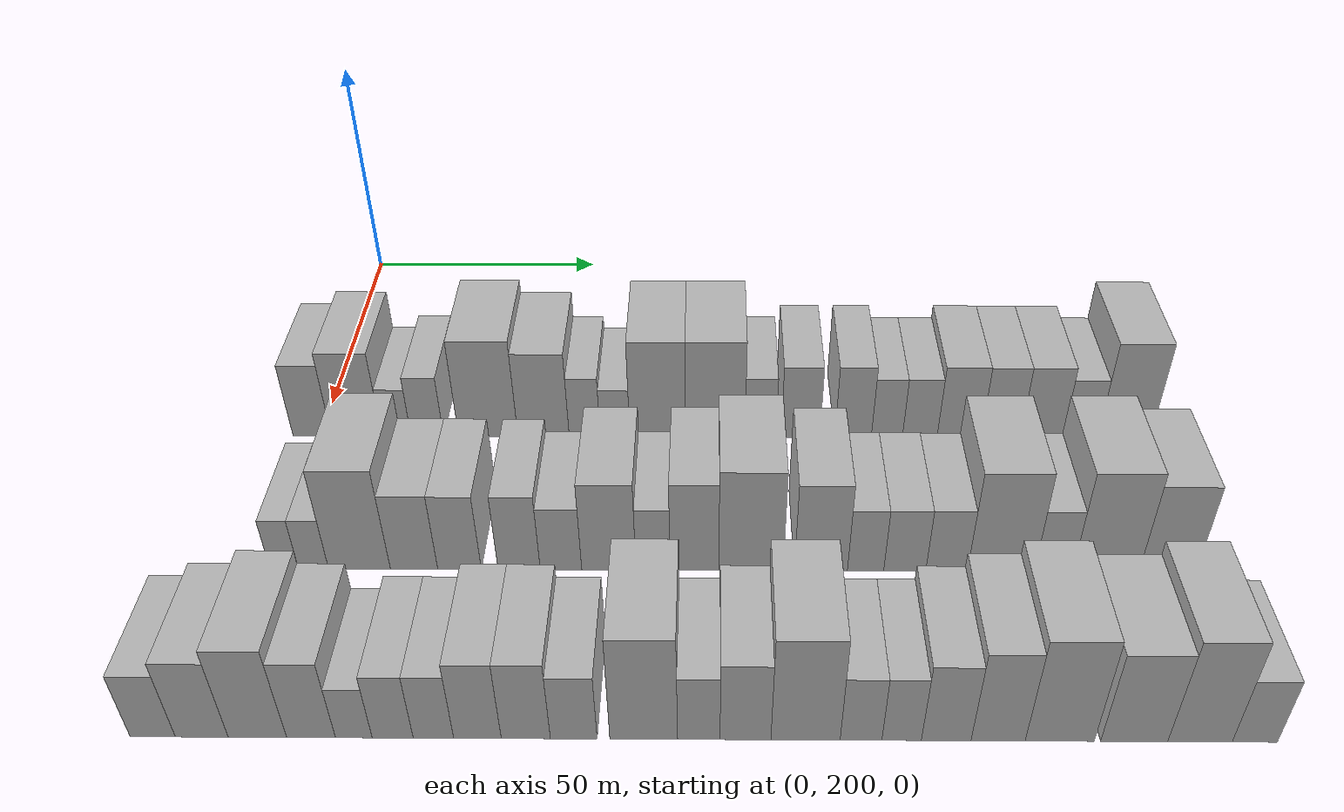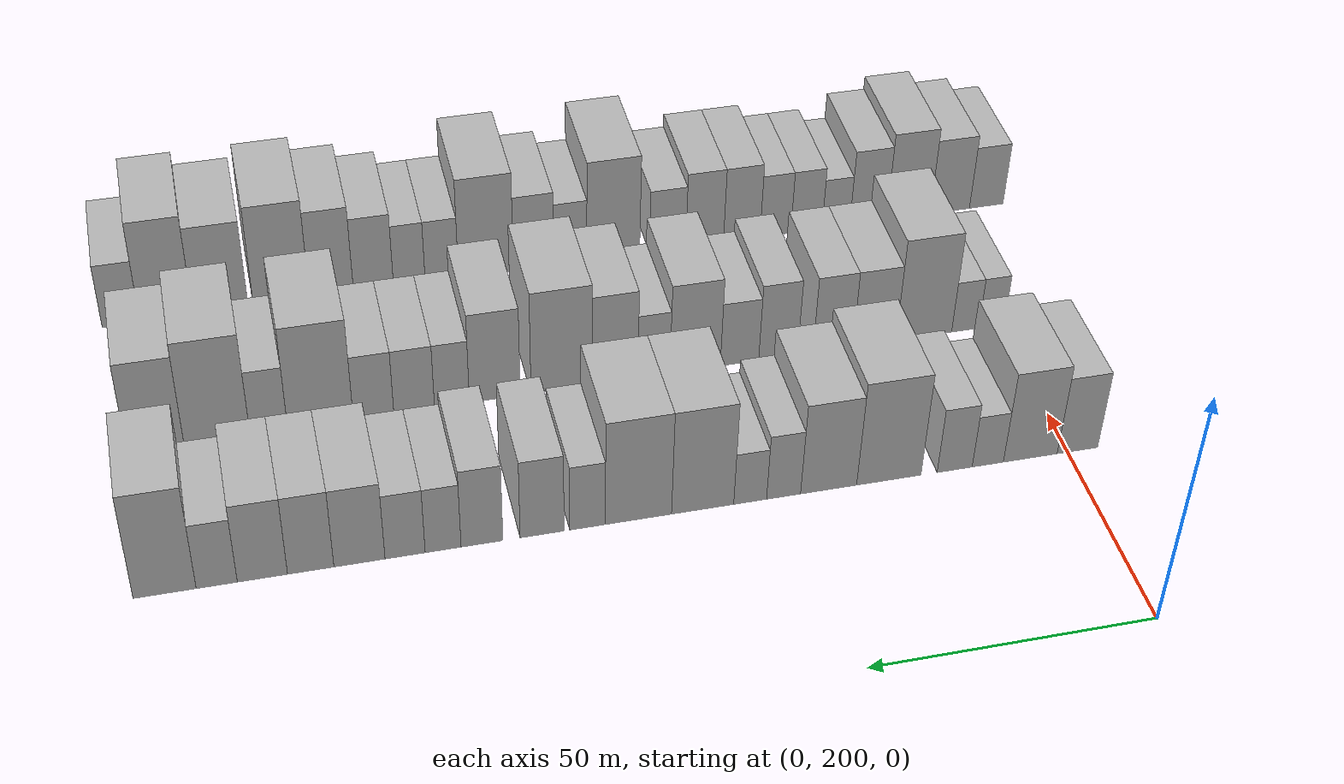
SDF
<sdf version="1.6">
 <world name="default">
  <model name="building_64">
   <static>1</static>
   <pose>50.0000 198.2894 0 0.000000 0.000000 0.000000</pose>
   <link name="link">
    <pose>0 0 9.00 0 0 0</pose>
    <collision name="collision"><geometry><box><size>20.0000 7.6532 18.0000</size></box></geometry></collision>
    <visual name="visual">
     <cast_shadows>0</cast_shadows>
     <geometry><box><size>20.0000 7.6532 18.0000</size></box></geometry>
     <material>
      <script>
       <uri>model://HANNAS_wall/materials/scripts</uri>
       <uri>model://HANNAS_wall/materials/textures</uri>
       <name>vrc/HANNAS_wall</name>
      </script>
     </material>
    </visual>
   </link>
  </model>
  <model name="building_65">
   <static>1</static>
   <pose>50.0000 207.1650 0 0.000000 0.000000 0.000000</pose>
   <link name="link">
    <pose>0 0 10.50 0 0 0</pose>
    <collision name="collision"><geometry><box><size>20.0000 10.0982 21.0000</size></box></geometry></collision>
    <visual name="visual">
     <cast_shadows>0</cast_shadows>
     <geometry><box><size>20.0000 10.0982 21.0000</size></box></geometry>
     <material>
      <script>
       <uri>model://HANNAS_wall/materials/scripts</uri>
       <uri>model://HANNAS_wall/materials/textures</uri>
       <name>vrc/HANNAS_wall</name>
      </script>
     </material>
    </visual>
   </link>
  </model>
  <model name="building_66">
   <static>1</static>
   <pose>50.0000 215.1283 0 0.000000 0.000000 0.000000</pose>
   <link name="link">
    <pose>0 0 6.00 0 0 0</pose>
    <collision name="collision"><geometry><box><size>20.0000 5.8283 12.0000</size></box></geometry></collision>
    <visual name="visual">
     <cast_shadows>0</cast_shadows>
     <geometry><box><size>20.0000 5.8283 12.0000</size></box></geometry>
     <material>
      <script>
       <uri>model://HANNAS_wall/materials/scripts</uri>
       <uri>model://HANNAS_wall/materials/textures</uri>
       <name>vrc/HANNAS_wall</name>
      </script>
     </material>
    </visual>
   </link>
  </model>
  <model name="building_67">
   <static>1</static>
   <pose>50.0000 221.2899 0 0.000000 0.000000 0.000000</pose>
   <link name="link">
    <pose>0 0 7.50 0 0 0</pose>
    <collision name="collision"><geometry><box><size>20.0000 6.4949 15.0000</size></box></geometry></collision>
    <visual name="visual">
     <cast_shadows>0</cast_shadows>
     <geometry><box><size>20.0000 6.4949 15.0000</size></box></geometry>
     <material>
      <script>
       <uri>model://HANNAS_wall/materials/scripts</uri>
       <uri>model://HANNAS_wall/materials/textures</uri>
       <name>vrc/HANNAS_wall</name>
      </script>
     </material>
    </visual>
   </link>
  </model>
  <model name="building_68">
   <static>1</static>
   <pose>50.0000 233.4532 0 0.000000 0.000000 0.000000</pose>
   <link name="link">
    <pose>0 0 12.00 0 0 0</pose>
    <collision name="collision"><geometry><box><size>20.0000 11.8316 24.0000</size></box></geometry></collision>
    <visual name="visual">
     <cast_shadows>0</cast_shadows>
     <geometry><box><size>20.0000 11.8316 24.0000</size></box></geometry>
     <material>
      <script>
       <uri>model://HANNAS_wall/materials/scripts</uri>
       <uri>model://HANNAS_wall/materials/textures</uri>
       <name>vrc/HANNAS_wall</name>
      </script>
     </material>
    </visual>
   </link>
  </model>
  <model name="building_69">
   <static>1</static>
   <pose>50.0000 244.4825 0 0.000000 0.000000 0.000000</pose>
   <link name="link">
    <pose>0 0 10.50 0 0 0</pose>
    <collision name="collision"><geometry><box><size>20.0000 10.2271 21.0000</size></box></geometry></collision>
    <visual name="visual">
     <cast_shadows>0</cast_shadows>
     <geometry><box><size>20.0000 10.2271 21.0000</size></box></geometry>
     <material>
      <script>
       <uri>model://HANNAS_wall/materials/scripts</uri>
       <uri>model://HANNAS_wall/materials/textures</uri>
       <name>vrc/HANNAS_wall</name>
      </script>
     </material>
    </visual>
   </link>
  </model>
  <model name="building_70">
   <static>1</static>
   <pose>50.0000 252.6746 0 0.000000 0.000000 0.000000</pose>
   <link name="link">
    <pose>0 0 7.50 0 0 0</pose>
    <collision name="collision"><geometry><box><size>20.0000 6.1571 15.0000</size></box></geometry></collision>
    <visual name="visual">
     <cast_shadows>0</cast_shadows>
     <geometry><box><size>20.0000 6.1571 15.0000</size></box></geometry>
     <material>
      <script>
       <uri>model://HANNAS_wall/materials/scripts</uri>
       <uri>model://HANNAS_wall/materials/textures</uri>
       <name>vrc/HANNAS_wall</name>
      </script>
     </material>
    </visual>
   </link>
  </model>
  <model name="building_71">
   <static>1</static>
   <pose>50.0000 258.7114 0 0.000000 0.000000 0.000000</pose>
   <link name="link">
    <pose>0 0 6.00 0 0 0</pose>
    <collision name="collision"><geometry><box><size>20.0000 5.9164 12.0000</size></box></geometry></collision>
    <visual name="visual">
     <cast_shadows>0</cast_shadows>
     <geometry><box><size>20.0000 5.9164 12.0000</size></box></geometry>
     <material>
      <script>
       <uri>model://HANNAS_wall/materials/scripts</uri>
       <uri>model://HANNAS_wall/materials/textures</uri>
       <name>vrc/HANNAS_wall</name>
      </script>
     </material>
    </visual>
   </link>
  </model>
  <model name="building_72">
   <static>1</static>
   <pose>50.0000 267.2373 0 0.000000 0.000000 0.000000</pose>
   <link name="link">
    <pose>0 0 12.00 0 0 0</pose>
    <collision name="collision"><geometry><box><size>20.0000 11.1354 24.0000</size></box></geometry></collision>
    <visual name="visual">
     <cast_shadows>0</cast_shadows>
     <geometry><box><size>20.0000 11.1354 24.0000</size></box></geometry>
     <material>
      <script>
       <uri>model://HANNAS_wall/materials/scripts</uri>
       <uri>model://HANNAS_wall/materials/textures</uri>
       <name>vrc/HANNAS_wall</name>
      </script>
     </material>
    </visual>
   </link>
  </model>
  <model name="building_73">
   <static>1</static>
   <pose>50.0000 278.6968 0 0.000000 0.000000 0.000000</pose>
   <link name="link">
    <pose>0 0 12.00 0 0 0</pose>
    <collision name="collision"><geometry><box><size>20.0000 11.7836 24.0000</size></box></geometry></collision>
    <visual name="visual">
     <cast_shadows>0</cast_shadows>
     <geometry><box><size>20.0000 11.7836 24.0000</size></box></geometry>
     <material>
      <script>
       <uri>model://HANNAS_wall/materials/scripts</uri>
       <uri>model://HANNAS_wall/materials/textures</uri>
       <name>vrc/HANNAS_wall</name>
      </script>
     </material>
    </visual>
   </link>
  </model>
  <model name="building_74">
   <static>1</static>
   <pose>50.0000 287.6970 0 0.000000 0.000000 0.000000</pose>
   <link name="link">
    <pose>0 0 7.50 0 0 0</pose>
    <collision name="collision"><geometry><box><size>20.0000 6.2170 15.0000</size></box></geometry></collision>
    <visual name="visual">
     <cast_shadows>0</cast_shadows>
     <geometry><box><size>20.0000 6.2170 15.0000</size></box></geometry>
     <material>
      <script>
       <uri>model://HANNAS_wall/materials/scripts</uri>
       <uri>model://HANNAS_wall/materials/textures</uri>
       <name>vrc/HANNAS_wall</name>
      </script>
     </material>
    </visual>
   </link>
  </model>
  <model name="building_75">
   <static>1</static>
   <pose>50.0000 295.6456 0 0.000000 0.000000 0.000000</pose>
   <link name="link">
    <pose>0 0 9.00 0 0 0</pose>
    <collision name="collision"><geometry><box><size>20.0000 7.6803 18.0000</size></box></geometry></collision>
    <visual name="visual">
     <cast_shadows>0</cast_shadows>
     <geometry><box><size>20.0000 7.6803 18.0000</size></box></geometry>
     <material>
      <script>
       <uri>model://HANNAS_wall/materials/scripts</uri>
       <uri>model://HANNAS_wall/materials/textures</uri>
       <name>vrc/HANNAS_wall</name>
      </script>
     </material>
    </visual>
   </link>
  </model>
  <model name="building_76">
   <static>1</static>
   <pose>50.0000 306.1095 0 0.000000 0.000000 0.000000</pose>
   <link name="link">
    <pose>0 0 9.00 0 0 0</pose>
    <collision name="collision"><geometry><box><size>20.0000 7.2474 18.0000</size></box></geometry></collision>
    <visual name="visual">
     <cast_shadows>0</cast_shadows>
     <geometry><box><size>20.0000 7.2474 18.0000</size></box></geometry>
     <material>
      <script>
       <uri>model://HANNAS_wall/materials/scripts</uri>
       <uri>model://HANNAS_wall/materials/textures</uri>
       <name>vrc/HANNAS_wall</name>
      </script>
     </material>
    </visual>
   </link>
  </model>
  <model name="building_77">
   <static>1</static>
   <pose>50.0000 312.8303 0 0.000000 0.000000 0.000000</pose>
   <link name="link">
    <pose>0 0 7.50 0 0 0</pose>
    <collision name="collision"><geometry><box><size>20.0000 6.1943 15.0000</size></box></geometry></collision>
    <visual name="visual">
     <cast_shadows>0</cast_shadows>
     <geometry><box><size>20.0000 6.1943 15.0000</size></box></geometry>
     <material>
      <script>
       <uri>model://HANNAS_wall/materials/scripts</uri>
       <uri>model://HANNAS_wall/materials/textures</uri>
       <name>vrc/HANNAS_wall</name>
      </script>
     </material>
    </visual>
   </link>
  </model>
  <model name="building_78">
   <static>1</static>
   <pose>50.0000 319.3700 0 0.000000 0.000000 0.000000</pose>
   <link name="link">
    <pose>0 0 7.50 0 0 0</pose>
    <collision name="collision"><geometry><box><size>20.0000 6.8851 15.0000</size></box></geometry></collision>
    <visual name="visual">
     <cast_shadows>0</cast_shadows>
     <geometry><box><size>20.0000 6.8851 15.0000</size></box></geometry>
     <material>
      <script>
       <uri>model://HANNAS_wall/materials/scripts</uri>
       <uri>model://HANNAS_wall/materials/textures</uri>
       <name>vrc/HANNAS_wall</name>
      </script>
     </material>
    </visual>
   </link>
  </model>
  <model name="building_79">
   <static>1</static>
   <pose>50.0000 327.1696 0 0.000000 0.000000 0.000000</pose>
   <link name="link">
    <pose>0 0 9.00 0 0 0</pose>
    <collision name="collision"><geometry><box><size>20.0000 8.7141 18.0000</size></box></geometry></collision>
    <visual name="visual">
     <cast_shadows>0</cast_shadows>
     <geometry><box><size>20.0000 8.7141 18.0000</size></box></geometry>
     <material>
      <script>
       <uri>model://HANNAS_wall/materials/scripts</uri>
       <uri>model://HANNAS_wall/materials/textures</uri>
       <name>vrc/HANNAS_wall</name>
      </script>
     </material>
    </visual>
   </link>
  </model>
  <model name="building_80">
   <static>1</static>
   <pose>50.0000 335.4508 0 0.000000 0.000000 0.000000</pose>
   <link name="link">
    <pose>0 0 9.00 0 0 0</pose>
    <collision name="collision"><geometry><box><size>20.0000 7.8483 18.0000</size></box></geometry></collision>
    <visual name="visual">
     <cast_shadows>0</cast_shadows>
     <geometry><box><size>20.0000 7.8483 18.0000</size></box></geometry>
     <material>
      <script>
       <uri>model://HANNAS_wall/materials/scripts</uri>
       <uri>model://HANNAS_wall/materials/textures</uri>
       <name>vrc/HANNAS_wall</name>
      </script>
     </material>
    </visual>
   </link>
  </model>
  <model name="building_81">
   <static>1</static>
   <pose>50.0000 343.5949 0 0.000000 0.000000 0.000000</pose>
   <link name="link">
    <pose>0 0 9.00 0 0 0</pose>
    <collision name="collision"><geometry><box><size>20.0000 8.4400 18.0000</size></box></geometry></collision>
    <visual name="visual">
     <cast_shadows>0</cast_shadows>
     <geometry><box><size>20.0000 8.4400 18.0000</size></box></geometry>
     <material>
      <script>
       <uri>model://HANNAS_wall/materials/scripts</uri>
       <uri>model://HANNAS_wall/materials/textures</uri>
       <name>vrc/HANNAS_wall</name>
      </script>
     </material>
    </visual>
   </link>
  </model>
  <model name="building_82">
   <static>1</static>
   <pose>50.0000 351.2537 0 0.000000 0.000000 0.000000</pose>
   <link name="link">
    <pose>0 0 7.50 0 0 0</pose>
    <collision name="collision"><geometry><box><size>20.0000 6.8775 15.0000</size></box></geometry></collision>
    <visual name="visual">
     <cast_shadows>0</cast_shadows>
     <geometry><box><size>20.0000 6.8775 15.0000</size></box></geometry>
     <material>
      <script>
       <uri>model://HANNAS_wall/materials/scripts</uri>
       <uri>model://HANNAS_wall/materials/textures</uri>
       <name>vrc/HANNAS_wall</name>
      </script>
     </material>
    </visual>
   </link>
  </model>
  <model name="building_83">
   <static>1</static>
   <pose>50.0000 359.9338 0 0.000000 0.000000 0.000000</pose>
   <link name="link">
    <pose>0 0 12.00 0 0 0</pose>
    <collision name="collision"><geometry><box><size>20.0000 10.4827 24.0000</size></box></geometry></collision>
    <visual name="visual">
     <cast_shadows>0</cast_shadows>
     <geometry><box><size>20.0000 10.4827 24.0000</size></box></geometry>
     <material>
      <script>
       <uri>model://HANNAS_wall/materials/scripts</uri>
       <uri>model://HANNAS_wall/materials/textures</uri>
       <name>vrc/HANNAS_wall</name>
      </script>
     </material>
    </visual>
   </link>
  </model>
  <model name="building_149">
   <static>1</static>
   <pose>85.0000 201.7659 0 0.000000 0.000000 0.000000</pose>
   <link name="link">
    <pose>0 0 6.00 0 0 0</pose>
    <collision name="collision"><geometry><box><size>20.0000 5.0970 12.0000</size></box></geometry></collision>
    <visual name="visual">
     <cast_shadows>0</cast_shadows>
     <geometry><box><size>20.0000 5.0970 12.0000</size></box></geometry>
     <material>
      <script>
       <uri>model://HANNAS_wall/materials/scripts</uri>
       <uri>model://HANNAS_wall/materials/textures</uri>
       <name>vrc/HANNAS_wall</name>
      </script>
     </material>
    </visual>
   </link>
  </model>
  <model name="building_150">
   <static>1</static>
   <pose>85.0000 207.0066 0 0.000000 0.000000 0.000000</pose>
   <link name="link">
    <pose>0 0 6.00 0 0 0</pose>
    <collision name="collision"><geometry><box><size>20.0000 5.3845 12.0000</size></box></geometry></collision>
    <visual name="visual">
     <cast_shadows>0</cast_shadows>
     <geometry><box><size>20.0000 5.3845 12.0000</size></box></geometry>
     <material>
      <script>
       <uri>model://HANNAS_wall/materials/scripts</uri>
       <uri>model://HANNAS_wall/materials/textures</uri>
       <name>vrc/HANNAS_wall</name>
      </script>
     </material>
    </visual>
   </link>
  </model>
  <model name="building_151">
   <static>1</static>
   <pose>85.0000 215.2189 0 0.000000 0.000000 0.000000</pose>
   <link name="link">
    <pose>0 0 12.00 0 0 0</pose>
    <collision name="collision"><geometry><box><size>20.0000 11.0400 24.0000</size></box></geometry></collision>
    <visual name="visual">
     <cast_shadows>0</cast_shadows>
     <geometry><box><size>20.0000 11.0400 24.0000</size></box></geometry>
     <material>
      <script>
       <uri>model://HANNAS_wall/materials/scripts</uri>
       <uri>model://HANNAS_wall/materials/textures</uri>
       <name>vrc/HANNAS_wall</name>
      </script>
     </material>
    </visual>
   </link>
  </model>
  <model name="building_152">
   <static>1</static>
   <pose>85.0000 224.9638 0 0.000000 0.000000 0.000000</pose>
   <link name="link">
    <pose>0 0 9.00 0 0 0</pose>
    <collision name="collision"><geometry><box><size>20.0000 8.4497 18.0000</size></box></geometry></collision>
    <visual name="visual">
     <cast_shadows>0</cast_shadows>
     <geometry><box><size>20.0000 8.4497 18.0000</size></box></geometry>
     <material>
      <script>
       <uri>model://HANNAS_wall/materials/scripts</uri>
       <uri>model://HANNAS_wall/materials/textures</uri>
       <name>vrc/HANNAS_wall</name>
      </script>
     </material>
    </visual>
   </link>
  </model>
  <model name="building_153">
   <static>1</static>
   <pose>85.0000 233.0754 0 0.000000 0.000000 0.000000</pose>
   <link name="link">
    <pose>0 0 9.00 0 0 0</pose>
    <collision name="collision"><geometry><box><size>20.0000 7.7736 18.0000</size></box></geometry></collision>
    <visual name="visual">
     <cast_shadows>0</cast_shadows>
     <geometry><box><size>20.0000 7.7736 18.0000</size></box></geometry>
     <material>
      <script>
       <uri>model://HANNAS_wall/materials/scripts</uri>
       <uri>model://HANNAS_wall/materials/textures</uri>
       <name>vrc/HANNAS_wall</name>
      </script>
     </material>
    </visual>
   </link>
  </model>
  <model name="building_154">
   <static>1</static>
   <pose>85.0000 243.7197 0 0.000000 0.000000 0.000000</pose>
   <link name="link">
    <pose>0 0 9.00 0 0 0</pose>
    <collision name="collision"><geometry><box><size>20.0000 7.5150 18.0000</size></box></geometry></collision>
    <visual name="visual">
     <cast_shadows>0</cast_shadows>
     <geometry><box><size>20.0000 7.5150 18.0000</size></box></geometry>
     <material>
      <script>
       <uri>model://HANNAS_wall/materials/scripts</uri>
       <uri>model://HANNAS_wall/materials/textures</uri>
       <name>vrc/HANNAS_wall</name>
      </script>
     </material>
    </visual>
   </link>
  </model>
  <model name="building_155">
   <static>1</static>
   <pose>85.0000 251.1692 0 0.000000 0.000000 0.000000</pose>
   <link name="link">
    <pose>0 0 7.50 0 0 0</pose>
    <collision name="collision"><geometry><box><size>20.0000 7.3840 15.0000</size></box></geometry></collision>
    <visual name="visual">
     <cast_shadows>0</cast_shadows>
     <geometry><box><size>20.0000 7.3840 15.0000</size></box></geometry>
     <material>
      <script>
       <uri>model://HANNAS_wall/materials/scripts</uri>
       <uri>model://HANNAS_wall/materials/textures</uri>
       <name>vrc/HANNAS_wall</name>
      </script>
     </material>
    </visual>
   </link>
  </model>
  <model name="building_156">
   <static>1</static>
   <pose>85.0000 259.6857 0 0.000000 0.000000 0.000000</pose>
   <link name="link">
    <pose>0 0 10.50 0 0 0</pose>
    <collision name="collision"><geometry><box><size>20.0000 9.6489 21.0000</size></box></geometry></collision>
    <visual name="visual">
     <cast_shadows>0</cast_shadows>
     <geometry><box><size>20.0000 9.6489 21.0000</size></box></geometry>
     <material>
      <script>
       <uri>model://HANNAS_wall/materials/scripts</uri>
       <uri>model://HANNAS_wall/materials/textures</uri>
       <name>vrc/HANNAS_wall</name>
      </script>
     </material>
    </visual>
   </link>
  </model>
  <model name="building_157">
   <static>1</static>
   <pose>85.0000 267.5702 0 0.000000 0.000000 0.000000</pose>
   <link name="link">
    <pose>0 0 7.50 0 0 0</pose>
    <collision name="collision"><geometry><box><size>20.0000 6.1201 15.0000</size></box></geometry></collision>
    <visual name="visual">
     <cast_shadows>0</cast_shadows>
     <geometry><box><size>20.0000 6.1201 15.0000</size></box></geometry>
     <material>
      <script>
       <uri>model://HANNAS_wall/materials/scripts</uri>
       <uri>model://HANNAS_wall/materials/textures</uri>
       <name>vrc/HANNAS_wall</name>
      </script>
     </material>
    </visual>
   </link>
  </model>
  <model name="building_158">
   <static>1</static>
   <pose>85.0000 274.9377 0 0.000000 0.000000 0.000000</pose>
   <link name="link">
    <pose>0 0 10.50 0 0 0</pose>
    <collision name="collision"><geometry><box><size>20.0000 8.6150 21.0000</size></box></geometry></collision>
    <visual name="visual">
     <cast_shadows>0</cast_shadows>
     <geometry><box><size>20.0000 8.6150 21.0000</size></box></geometry>
     <material>
      <script>
       <uri>model://HANNAS_wall/materials/scripts</uri>
       <uri>model://HANNAS_wall/materials/textures</uri>
       <name>vrc/HANNAS_wall</name>
      </script>
     </material>
    </visual>
   </link>
  </model>
  <model name="building_159">
   <static>1</static>
   <pose>85.0000 284.9711 0 0.000000 0.000000 0.000000</pose>
   <link name="link">
    <pose>0 0 12.00 0 0 0</pose>
    <collision name="collision"><geometry><box><size>20.0000 11.4518 24.0000</size></box></geometry></collision>
    <visual name="visual">
     <cast_shadows>0</cast_shadows>
     <geometry><box><size>20.0000 11.4518 24.0000</size></box></geometry>
     <material>
      <script>
       <uri>model://HANNAS_wall/materials/scripts</uri>
       <uri>model://HANNAS_wall/materials/textures</uri>
       <name>vrc/HANNAS_wall</name>
      </script>
     </material>
    </visual>
   </link>
  </model>
  <model name="building_160">
   <static>1</static>
   <pose>85.0000 297.4136 0 0.000000 0.000000 0.000000</pose>
   <link name="link">
    <pose>0 0 10.50 0 0 0</pose>
    <collision name="collision"><geometry><box><size>20.0000 9.4331 21.0000</size></box></geometry></collision>
    <visual name="visual">
     <cast_shadows>0</cast_shadows>
     <geometry><box><size>20.0000 9.4331 21.0000</size></box></geometry>
     <material>
      <script>
       <uri>model://HANNAS_wall/materials/scripts</uri>
       <uri>model://HANNAS_wall/materials/textures</uri>
       <name>vrc/HANNAS_wall</name>
      </script>
     </material>
    </visual>
   </link>
  </model>
  <model name="building_161">
   <static>1</static>
   <pose>85.0000 305.3584 0 0.000000 0.000000 0.000000</pose>
   <link name="link">
    <pose>0 0 7.50 0 0 0</pose>
    <collision name="collision"><geometry><box><size>20.0000 6.4564 15.0000</size></box></geometry></collision>
    <visual name="visual">
     <cast_shadows>0</cast_shadows>
     <geometry><box><size>20.0000 6.4564 15.0000</size></box></geometry>
     <material>
      <script>
       <uri>model://HANNAS_wall/materials/scripts</uri>
       <uri>model://HANNAS_wall/materials/textures</uri>
       <name>vrc/HANNAS_wall</name>
      </script>
     </material>
    </visual>
   </link>
  </model>
  <model name="building_162">
   <static>1</static>
   <pose>85.0000 312.3244 0 0.000000 0.000000 0.000000</pose>
   <link name="link">
    <pose>0 0 7.50 0 0 0</pose>
    <collision name="collision"><geometry><box><size>20.0000 7.4757 15.0000</size></box></geometry></collision>
    <visual name="visual">
     <cast_shadows>0</cast_shadows>
     <geometry><box><size>20.0000 7.4757 15.0000</size></box></geometry>
     <material>
      <script>
       <uri>model://HANNAS_wall/materials/scripts</uri>
       <uri>model://HANNAS_wall/materials/textures</uri>
       <name>vrc/HANNAS_wall</name>
      </script>
     </material>
    </visual>
   </link>
  </model>
  <model name="building_163">
   <static>1</static>
   <pose>85.0000 319.7543 0 0.000000 0.000000 0.000000</pose>
   <link name="link">
    <pose>0 0 7.50 0 0 0</pose>
    <collision name="collision"><geometry><box><size>20.0000 7.3842 15.0000</size></box></geometry></collision>
    <visual name="visual">
     <cast_shadows>0</cast_shadows>
     <geometry><box><size>20.0000 7.3842 15.0000</size></box></geometry>
     <material>
      <script>
       <uri>model://HANNAS_wall/materials/scripts</uri>
       <uri>model://HANNAS_wall/materials/textures</uri>
       <name>vrc/HANNAS_wall</name>
      </script>
     </material>
    </visual>
   </link>
  </model>
  <model name="building_164">
   <static>1</static>
   <pose>85.0000 329.4001 0 0.000000 0.000000 0.000000</pose>
   <link name="link">
    <pose>0 0 12.00 0 0 0</pose>
    <collision name="collision"><geometry><box><size>20.0000 11.9073 24.0000</size></box></geometry></collision>
    <visual name="visual">
     <cast_shadows>0</cast_shadows>
     <geometry><box><size>20.0000 11.9073 24.0000</size></box></geometry>
     <material>
      <script>
       <uri>model://HANNAS_wall/materials/scripts</uri>
       <uri>model://HANNAS_wall/materials/textures</uri>
       <name>vrc/HANNAS_wall</name>
      </script>
     </material>
    </visual>
   </link>
  </model>
  <model name="building_165">
   <static>1</static>
   <pose>85.0000 338.7443 0 0.000000 0.000000 0.000000</pose>
   <link name="link">
    <pose>0 0 7.50 0 0 0</pose>
    <collision name="collision"><geometry><box><size>20.0000 6.7811 15.0000</size></box></geometry></collision>
    <visual name="visual">
     <cast_shadows>0</cast_shadows>
     <geometry><box><size>20.0000 6.7811 15.0000</size></box></geometry>
     <material>
      <script>
       <uri>model://HANNAS_wall/materials/scripts</uri>
       <uri>model://HANNAS_wall/materials/textures</uri>
       <name>vrc/HANNAS_wall</name>
      </script>
     </material>
    </visual>
   </link>
  </model>
  <model name="building_166">
   <static>1</static>
   <pose>85.0000 348.0358 0 0.000000 0.000000 0.000000</pose>
   <link name="link">
    <pose>0 0 12.00 0 0 0</pose>
    <collision name="collision"><geometry><box><size>20.0000 11.8021 24.0000</size></box></geometry></collision>
    <visual name="visual">
     <cast_shadows>0</cast_shadows>
     <geometry><box><size>20.0000 11.8021 24.0000</size></box></geometry>
     <material>
      <script>
       <uri>model://HANNAS_wall/materials/scripts</uri>
       <uri>model://HANNAS_wall/materials/textures</uri>
       <name>vrc/HANNAS_wall</name>
      </script>
     </material>
    </visual>
   </link>
  </model>
  <model name="building_167">
   <static>1</static>
   <pose>85.0000 359.0160 0 0.000000 0.000000 0.000000</pose>
   <link name="link">
    <pose>0 0 10.50 0 0 0</pose>
    <collision name="collision"><geometry><box><size>20.0000 10.1583 21.0000</size></box></geometry></collision>
    <visual name="visual">
     <cast_shadows>0</cast_shadows>
     <geometry><box><size>20.0000 10.1583 21.0000</size></box></geometry>
     <material>
      <script>
       <uri>model://HANNAS_wall/materials/scripts</uri>
       <uri>model://HANNAS_wall/materials/textures</uri>
       <name>vrc/HANNAS_wall</name>
      </script>
     </material>
    </visual>
   </link>
  </model>
  <model name="building_225">
   <static>1</static>
   <pose>120.0000 190.1866 0 0.000000 0.000000 0.000000</pose>
   <link name="link">
    <pose>0 0 7.50 0 0 0</pose>
    <collision name="collision"><geometry><box><size>20.0000 7.1170 15.0000</size></box></geometry></collision>
    <visual name="visual">
     <cast_shadows>0</cast_shadows>
     <geometry><box><size>20.0000 7.1170 15.0000</size></box></geometry>
     <material>
      <script>
       <uri>model://HANNAS_wall/materials/scripts</uri>
       <uri>model://HANNAS_wall/materials/textures</uri>
       <name>vrc/HANNAS_wall</name>
      </script>
     </material>
    </visual>
   </link>
  </model>
  <model name="building_226">
   <static>1</static>
   <pose>120.0000 197.9017 0 0.000000 0.000000 0.000000</pose>
   <link name="link">
    <pose>0 0 9.00 0 0 0</pose>
    <collision name="collision"><geometry><box><size>20.0000 8.3133 18.0000</size></box></geometry></collision>
    <visual name="visual">
     <cast_shadows>0</cast_shadows>
     <geometry><box><size>20.0000 8.3133 18.0000</size></box></geometry>
     <material>
      <script>
       <uri>model://HANNAS_wall/materials/scripts</uri>
       <uri>model://HANNAS_wall/materials/textures</uri>
       <name>vrc/HANNAS_wall</name>
      </script>
     </material>
    </visual>
   </link>
  </model>
  <model name="building_227">
   <static>1</static>
   <pose>120.0000 206.6567 0 0.000000 0.000000 0.000000</pose>
   <link name="link">
    <pose>0 0 10.50 0 0 0</pose>
    <collision name="collision"><geometry><box><size>20.0000 9.1966 21.0000</size></box></geometry></collision>
    <visual name="visual">
     <cast_shadows>0</cast_shadows>
     <geometry><box><size>20.0000 9.1966 21.0000</size></box></geometry>
     <material>
      <script>
       <uri>model://HANNAS_wall/materials/scripts</uri>
       <uri>model://HANNAS_wall/materials/textures</uri>
       <name>vrc/HANNAS_wall</name>
      </script>
     </material>
    </visual>
   </link>
  </model>
  <model name="building_228">
   <static>1</static>
   <pose>120.0000 215.0973 0 0.000000 0.000000 0.000000</pose>
   <link name="link">
    <pose>0 0 9.00 0 0 0</pose>
    <collision name="collision"><geometry><box><size>20.0000 7.6846 18.0000</size></box></geometry></collision>
    <visual name="visual">
     <cast_shadows>0</cast_shadows>
     <geometry><box><size>20.0000 7.6846 18.0000</size></box></geometry>
     <material>
      <script>
       <uri>model://HANNAS_wall/materials/scripts</uri>
       <uri>model://HANNAS_wall/materials/textures</uri>
       <name>vrc/HANNAS_wall</name>
      </script>
     </material>
    </visual>
   </link>
  </model>
  <model name="building_229">
   <static>1</static>
   <pose>120.0000 221.8218 0 0.000000 0.000000 0.000000</pose>
   <link name="link">
    <pose>0 0 6.00 0 0 0</pose>
    <collision name="collision"><geometry><box><size>20.0000 5.7645 12.0000</size></box></geometry></collision>
    <visual name="visual">
     <cast_shadows>0</cast_shadows>
     <geometry><box><size>20.0000 5.7645 12.0000</size></box></geometry>
     <material>
      <script>
       <uri>model://HANNAS_wall/materials/scripts</uri>
       <uri>model://HANNAS_wall/materials/textures</uri>
       <name>vrc/HANNAS_wall</name>
      </script>
     </material>
    </visual>
   </link>
  </model>
  <model name="building_230">
   <static>1</static>
   <pose>120.0000 227.9317 0 0.000000 0.000000 0.000000</pose>
   <link name="link">
    <pose>0 0 7.50 0 0 0</pose>
    <collision name="collision"><geometry><box><size>20.0000 6.4552 15.0000</size></box></geometry></collision>
    <visual name="visual">
     <cast_shadows>0</cast_shadows>
     <geometry><box><size>20.0000 6.4552 15.0000</size></box></geometry>
     <material>
      <script>
       <uri>model://HANNAS_wall/materials/scripts</uri>
       <uri>model://HANNAS_wall/materials/textures</uri>
       <name>vrc/HANNAS_wall</name>
      </script>
     </material>
    </visual>
   </link>
  </model>
  <model name="building_231">
   <static>1</static>
   <pose>120.0000 234.3389 0 0.000000 0.000000 0.000000</pose>
   <link name="link">
    <pose>0 0 7.50 0 0 0</pose>
    <collision name="collision"><geometry><box><size>20.0000 6.3593 15.0000</size></box></geometry></collision>
    <visual name="visual">
     <cast_shadows>0</cast_shadows>
     <geometry><box><size>20.0000 6.3593 15.0000</size></box></geometry>
     <material>
      <script>
       <uri>model://HANNAS_wall/materials/scripts</uri>
       <uri>model://HANNAS_wall/materials/textures</uri>
       <name>vrc/HANNAS_wall</name>
      </script>
     </material>
    </visual>
   </link>
  </model>
  <model name="building_232">
   <static>1</static>
   <pose>120.0000 241.2539 0 0.000000 0.000000 0.000000</pose>
   <link name="link">
    <pose>0 0 9.00 0 0 0</pose>
    <collision name="collision"><geometry><box><size>20.0000 7.4707 18.0000</size></box></geometry></collision>
    <visual name="visual">
     <cast_shadows>0</cast_shadows>
     <geometry><box><size>20.0000 7.4707 18.0000</size></box></geometry>
     <material>
      <script>
       <uri>model://HANNAS_wall/materials/scripts</uri>
       <uri>model://HANNAS_wall/materials/textures</uri>
       <name>vrc/HANNAS_wall</name>
      </script>
     </material>
    </visual>
   </link>
  </model>
  <model name="building_233">
   <static>1</static>
   <pose>120.0000 248.8460 0 0.000000 0.000000 0.000000</pose>
   <link name="link">
    <pose>0 0 9.00 0 0 0</pose>
    <collision name="collision"><geometry><box><size>20.0000 7.7134 18.0000</size></box></geometry></collision>
    <visual name="visual">
     <cast_shadows>0</cast_shadows>
     <geometry><box><size>20.0000 7.7134 18.0000</size></box></geometry>
     <material>
      <script>
       <uri>model://HANNAS_wall/materials/scripts</uri>
       <uri>model://HANNAS_wall/materials/textures</uri>
       <name>vrc/HANNAS_wall</name>
      </script>
     </material>
    </visual>
   </link>
  </model>
  <model name="building_234">
   <static>1</static>
   <pose>120.0000 256.3696 0 0.000000 0.000000 0.000000</pose>
   <link name="link">
    <pose>0 0 7.50 0 0 0</pose>
    <collision name="collision"><geometry><box><size>20.0000 7.3338 15.0000</size></box></geometry></collision>
    <visual name="visual">
     <cast_shadows>0</cast_shadows>
     <geometry><box><size>20.0000 7.3338 15.0000</size></box></geometry>
     <material>
      <script>
       <uri>model://HANNAS_wall/materials/scripts</uri>
       <uri>model://HANNAS_wall/materials/textures</uri>
       <name>vrc/HANNAS_wall</name>
      </script>
     </material>
    </visual>
   </link>
  </model>
  <model name="building_235">
   <static>1</static>
   <pose>120.0000 267.3525 0 0.000000 0.000000 0.000000</pose>
   <link name="link">
    <pose>0 0 12.00 0 0 0</pose>
    <collision name="collision"><geometry><box><size>20.0000 10.6321 24.0000</size></box></geometry></collision>
    <visual name="visual">
     <cast_shadows>0</cast_shadows>
     <geometry><box><size>20.0000 10.6321 24.0000</size></box></geometry>
     <material>
      <script>
       <uri>model://HANNAS_wall/materials/scripts</uri>
       <uri>model://HANNAS_wall/materials/textures</uri>
       <name>vrc/HANNAS_wall</name>
      </script>
     </material>
    </visual>
   </link>
  </model>
  <model name="building_236">
   <static>1</static>
   <pose>120.0000 275.9872 0 0.000000 0.000000 0.000000</pose>
   <link name="link">
    <pose>0 0 7.50 0 0 0</pose>
    <collision name="collision"><geometry><box><size>20.0000 6.6373 15.0000</size></box></geometry></collision>
    <visual name="visual">
     <cast_shadows>0</cast_shadows>
     <geometry><box><size>20.0000 6.6373 15.0000</size></box></geometry>
     <material>
      <script>
       <uri>model://HANNAS_wall/materials/scripts</uri>
       <uri>model://HANNAS_wall/materials/textures</uri>
       <name>vrc/HANNAS_wall</name>
      </script>
     </material>
    </visual>
   </link>
  </model>
  <model name="building_237">
   <static>1</static>
   <pose>120.0000 283.2970 0 0.000000 0.000000 0.000000</pose>
   <link name="link">
    <pose>0 0 9.00 0 0 0</pose>
    <collision name="collision"><geometry><box><size>20.0000 7.9823 18.0000</size></box></geometry></collision>
    <visual name="visual">
     <cast_shadows>0</cast_shadows>
     <geometry><box><size>20.0000 7.9823 18.0000</size></box></geometry>
     <material>
      <script>
       <uri>model://HANNAS_wall/materials/scripts</uri>
       <uri>model://HANNAS_wall/materials/textures</uri>
       <name>vrc/HANNAS_wall</name>
      </script>
     </material>
    </visual>
   </link>
  </model>
  <model name="building_238">
   <static>1</static>
   <pose>120.0000 292.7138 0 0.000000 0.000000 0.000000</pose>
   <link name="link">
    <pose>0 0 12.00 0 0 0</pose>
    <collision name="collision"><geometry><box><size>20.0000 10.8513 24.0000</size></box></geometry></collision>
    <visual name="visual">
     <cast_shadows>0</cast_shadows>
     <geometry><box><size>20.0000 10.8513 24.0000</size></box></geometry>
     <material>
      <script>
       <uri>model://HANNAS_wall/materials/scripts</uri>
       <uri>model://HANNAS_wall/materials/textures</uri>
       <name>vrc/HANNAS_wall</name>
      </script>
     </material>
    </visual>
   </link>
  </model>
  <model name="building_239">
   <static>1</static>
   <pose>120.0000 301.4055 0 0.000000 0.000000 0.000000</pose>
   <link name="link">
    <pose>0 0 7.50 0 0 0</pose>
    <collision name="collision"><geometry><box><size>20.0000 6.5320 15.0000</size></box></geometry></collision>
    <visual name="visual">
     <cast_shadows>0</cast_shadows>
     <geometry><box><size>20.0000 6.5320 15.0000</size></box></geometry>
     <material>
      <script>
       <uri>model://HANNAS_wall/materials/scripts</uri>
       <uri>model://HANNAS_wall/materials/textures</uri>
       <name>vrc/HANNAS_wall</name>
      </script>
     </material>
    </visual>
   </link>
  </model>
  <model name="building_240">
   <static>1</static>
   <pose>120.0000 307.7646 0 0.000000 0.000000 0.000000</pose>
   <link name="link">
    <pose>0 0 7.50 0 0 0</pose>
    <collision name="collision"><geometry><box><size>20.0000 6.1864 15.0000</size></box></geometry></collision>
    <visual name="visual">
     <cast_shadows>0</cast_shadows>
     <geometry><box><size>20.0000 6.1864 15.0000</size></box></geometry>
     <material>
      <script>
       <uri>model://HANNAS_wall/materials/scripts</uri>
       <uri>model://HANNAS_wall/materials/textures</uri>
       <name>vrc/HANNAS_wall</name>
      </script>
     </material>
    </visual>
   </link>
  </model>
  <model name="building_241">
   <static>1</static>
   <pose>120.0000 314.7471 0 0.000000 0.000000 0.000000</pose>
   <link name="link">
    <pose>0 0 9.00 0 0 0</pose>
    <collision name="collision"><geometry><box><size>20.0000 7.7785 18.0000</size></box></geometry></collision>
    <visual name="visual">
     <cast_shadows>0</cast_shadows>
     <geometry><box><size>20.0000 7.7785 18.0000</size></box></geometry>
     <material>
      <script>
       <uri>model://HANNAS_wall/materials/scripts</uri>
       <uri>model://HANNAS_wall/materials/textures</uri>
       <name>vrc/HANNAS_wall</name>
      </script>
     </material>
    </visual>
   </link>
  </model>
  <model name="building_242">
   <static>1</static>
   <pose>120.0000 322.8813 0 0.000000 0.000000 0.000000</pose>
   <link name="link">
    <pose>0 0 10.50 0 0 0</pose>
    <collision name="collision"><geometry><box><size>20.0000 8.4899 21.0000</size></box></geometry></collision>
    <visual name="visual">
     <cast_shadows>0</cast_shadows>
     <geometry><box><size>20.0000 8.4899 21.0000</size></box></geometry>
     <material>
      <script>
       <uri>model://HANNAS_wall/materials/scripts</uri>
       <uri>model://HANNAS_wall/materials/textures</uri>
       <name>vrc/HANNAS_wall</name>
      </script>
     </material>
    </visual>
   </link>
  </model>
  <model name="building_243">
   <static>1</static>
   <pose>120.0000 332.5271 0 0.000000 0.000000 0.000000</pose>
   <link name="link">
    <pose>0 0 12.00 0 0 0</pose>
    <collision name="collision"><geometry><box><size>20.0000 10.8017 24.0000</size></box></geometry></collision>
    <visual name="visual">
     <cast_shadows>0</cast_shadows>
     <geometry><box><size>20.0000 10.8017 24.0000</size></box></geometry>
     <material>
      <script>
       <uri>model://HANNAS_wall/materials/scripts</uri>
       <uri>model://HANNAS_wall/materials/textures</uri>
       <name>vrc/HANNAS_wall</name>
      </script>
     </material>
    </visual>
   </link>
  </model>
  <model name="building_244">
   <static>1</static>
   <pose>120.0000 344.1764 0 0.000000 0.000000 0.000000</pose>
   <link name="link">
    <pose>0 0 10.50 0 0 0</pose>
    <collision name="collision"><geometry><box><size>20.0000 10.4970 21.0000</size></box></geometry></collision>
    <visual name="visual">
     <cast_shadows>0</cast_shadows>
     <geometry><box><size>20.0000 10.4970 21.0000</size></box></geometry>
     <material>
      <script>
       <uri>model://HANNAS_wall/materials/scripts</uri>
       <uri>model://HANNAS_wall/materials/textures</uri>
       <name>vrc/HANNAS_wall</name>
      </script>
     </material>
    </visual>
   </link>
  </model>
  <model name="building_245">
   <static>1</static>
   <pose>120.0000 354.4674 0 0.000000 0.000000 0.000000</pose>
   <link name="link">
    <pose>0 0 12.00 0 0 0</pose>
    <collision name="collision"><geometry><box><size>20.0000 10.0850 24.0000</size></box></geometry></collision>
    <visual name="visual">
     <cast_shadows>0</cast_shadows>
     <geometry><box><size>20.0000 10.0850 24.0000</size></box></geometry>
     <material>
      <script>
       <uri>model://HANNAS_wall/materials/scripts</uri>
       <uri>model://HANNAS_wall/materials/textures</uri>
       <name>vrc/HANNAS_wall</name>
      </script>
     </material>
    </visual>
   </link>
  </model>
  <model name="building_246">
   <static>1</static>
   <pose>120.0000 363.0437 0 0.000000 0.000000 0.000000</pose>
   <link name="link">
    <pose>0 0 7.50 0 0 0</pose>
    <collision name="collision"><geometry><box><size>20.0000 7.0676 15.0000</size></box></geometry></collision>
    <visual name="visual">
     <cast_shadows>0</cast_shadows>
     <geometry><box><size>20.0000 7.0676 15.0000</size></box></geometry>
     <material>
      <script>
       <uri>model://HANNAS_wall/materials/scripts</uri>
       <uri>model://HANNAS_wall/materials/textures</uri>
       <name>vrc/HANNAS_wall</name>
      </script>
     </material>
    </visual>
   </link>
  </model>
 </world>
</sdf>
